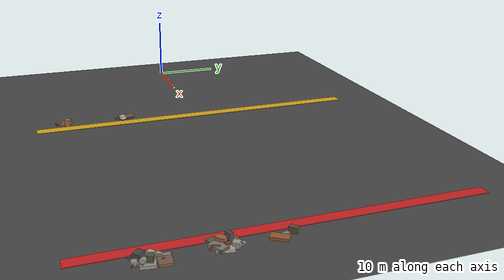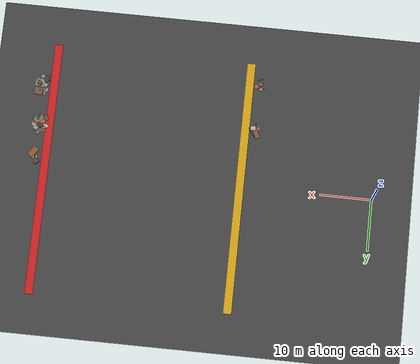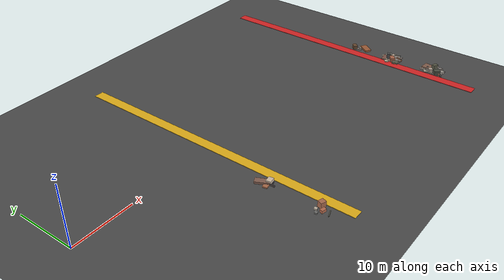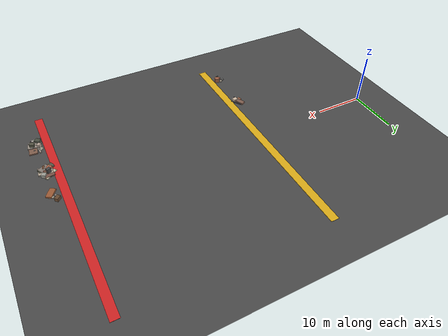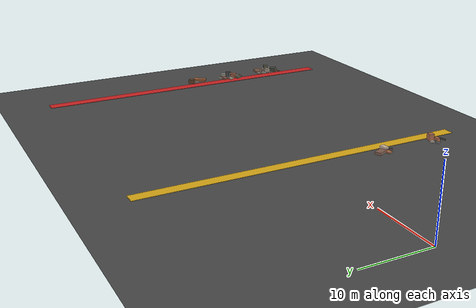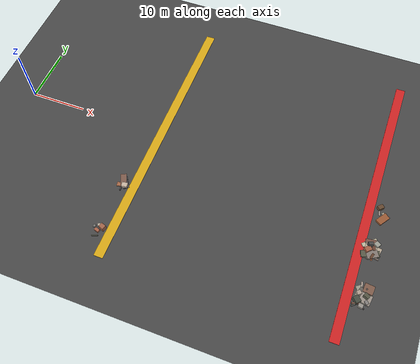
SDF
<sdf version="1.6">
 <world name="navitas_arena">
  <model name="ground_plane">
   <static>true</static>
   <link name="link">
    <collision name="collision">
     <geometry><plane><normal>0 0 1</normal><size>400 400</size></plane></geometry>
     <surface><friction><ode><mu>0.800</mu><mu2>0.800</mu2></ode></friction></surface>
    </collision>
    <visual name="visual">
     <cast_shadows>false</cast_shadows>
     <geometry><plane><normal>0 0 1</normal><size>400 400</size></plane></geometry>
     <material>
      <specular>0.04 0.04 0.04 1</specular>
      <script>
       <uri>file://media/materials/scripts/navitas_asphalt.material</uri>
       <name>Navitas/RealArenaAsphalt</name>
      </script>
     </material>
    </visual>
   </link>
  </model>
  <model name="brd_orta_E">
   <static>true</static>
   <pose>25.800 0.000 0.040 0 0 0.000</pose>
   <link name="link">
    <collision name="col"><geometry><box><size>1.600 50.000 0.080</size></box></geometry></collision>
    <visual name="vis">
     <geometry><box><size>1.600 50.000 0.080</size></box></geometry>
     <material>
      <ambient>0.90 0.70 0.10 1</ambient>
      <diffuse>0.90 0.70 0.10 1</diffuse>
      <specular>0.04 0.04 0.04 1</specular>
     </material>
    </visual>
   </link>
  </model>
  <model name="deb_orta_58">
   <static>true</static>
   <pose>23.902 -20.772 0.000 0 0 0</pose>
   <link name="link">
    <collision name="col_0">
     <pose>0.462 0.488 0.489 0.000 0.000 1.232</pose>
     <geometry><box><size>0.779 0.884 0.979</size></box></geometry>
    </collision>
    <visual name="vis_0">
     <pose>0.462 0.488 0.489 0.000 0.000 1.232</pose>
     <geometry><box><size>0.779 0.884 0.979</size></box></geometry>
     <material>
      <ambient>0.62 0.39 0.28 1</ambient>
      <diffuse>0.67 0.42 0.31 1</diffuse>
      <specular>0.05 0.05 0.045 1</specular>
     </material>
    </visual>
    <collision name="col_1">
     <pose>-0.336 0.082 0.093 0.000 0.000 2.559</pose>
     <geometry><box><size>0.305 0.218 0.186</size></box></geometry>
    </collision>
    <visual name="vis_1">
     <pose>-0.336 0.082 0.093 0.000 0.000 2.559</pose>
     <geometry><box><size>0.305 0.218 0.186</size></box></geometry>
     <material>
      <ambient>0.55 0.54 0.49 1</ambient>
      <diffuse>0.59 0.59 0.53 1</diffuse>
      <specular>0.05 0.05 0.045 1</specular>
     </material>
    </visual>
    <collision name="col_2">
     <pose>-0.265 -0.174 0.229 0.000 0.000 1.310</pose>
     <geometry><box><size>0.517 0.791 0.458</size></box></geometry>
    </collision>
    <visual name="vis_2">
     <pose>-0.265 -0.174 0.229 0.000 0.000 1.310</pose>
     <geometry><box><size>0.517 0.791 0.458</size></box></geometry>
     <material>
      <ambient>0.66 0.39 0.28 1</ambient>
      <diffuse>0.71 0.42 0.31 1</diffuse>
      <specular>0.05 0.05 0.045 1</specular>
     </material>
    </visual>
    <collision name="col_3">
     <pose>-1.041 0.398 0.112 0.000 0.000 3.349</pose>
     <geometry><box><size>0.438 0.429 0.225</size></box></geometry>
    </collision>
    <visual name="vis_3">
     <pose>-1.041 0.398 0.112 0.000 0.000 3.349</pose>
     <geometry><box><size>0.438 0.429 0.225</size></box></geometry>
     <material>
      <ambient>0.43 0.43 0.42 1</ambient>
      <diffuse>0.46 0.46 0.45 1</diffuse>
      <specular>0.05 0.05 0.045 1</specular>
     </material>
    </visual>
    <collision name="col_4">
     <pose>-0.233 -1.136 0.109 0.000 0.000 3.494</pose>
     <geometry><box><size>1.040 0.147 0.217</size></box></geometry>
    </collision>
    <visual name="vis_4">
     <pose>-0.233 -1.136 0.109 0.000 0.000 3.494</pose>
     <geometry><box><size>1.040 0.147 0.217</size></box></geometry>
     <material>
      <ambient>0.30 0.31 0.27 1</ambient>
      <diffuse>0.33 0.33 0.29 1</diffuse>
      <specular>0.05 0.05 0.045 1</specular>
     </material>
    </visual>
    <collision name="col_5">
     <pose>-0.420 0.854 0.114 0.000 0.000 1.861</pose>
     <geometry><box><size>0.468 0.460 0.228</size></box></geometry>
    </collision>
    <visual name="vis_5">
     <pose>-0.420 0.854 0.114 0.000 0.000 1.861</pose>
     <geometry><box><size>0.468 0.460 0.228</size></box></geometry>
     <material>
      <ambient>0.71 0.66 0.60 1</ambient>
      <diffuse>0.77 0.72 0.65 1</diffuse>
      <specular>0.05 0.05 0.045 1</specular>
     </material>
    </visual>
   </link>
  </model>
  <model name="deb_orta_291">
   <static>true</static>
   <pose>23.845 -11.563 0.000 0 0 0</pose>
   <link name="link">
    <collision name="col_0">
     <pose>-0.003 -0.322 0.136 0.000 0.000 1.586</pose>
     <geometry><box><size>2.205 0.167 0.272</size></box></geometry>
    </collision>
    <visual name="vis_0">
     <pose>-0.003 -0.322 0.136 0.000 0.000 1.586</pose>
     <geometry><box><size>2.205 0.167 0.272</size></box></geometry>
     <material>
      <ambient>0.28 0.26 0.26 1</ambient>
      <diffuse>0.31 0.28 0.28 1</diffuse>
      <specular>0.05 0.05 0.045 1</specular>
     </material>
    </visual>
    <collision name="col_1">
     <pose>-0.208 -0.301 0.096 0.000 0.000 0.202</pose>
     <geometry><box><size>1.535 0.749 0.192</size></box></geometry>
    </collision>
    <visual name="vis_1">
     <pose>-0.208 -0.301 0.096 0.000 0.000 0.202</pose>
     <geometry><box><size>1.535 0.749 0.192</size></box></geometry>
     <material>
      <ambient>0.63 0.40 0.28 1</ambient>
      <diffuse>0.68 0.43 0.30 1</diffuse>
      <specular>0.05 0.05 0.045 1</specular>
     </material>
    </visual>
    <collision name="col_2">
     <pose>0.429 0.160 0.090 0.000 0.000 1.834</pose>
     <geometry><box><size>1.984 0.197 0.180</size></box></geometry>
    </collision>
    <visual name="vis_2">
     <pose>0.429 0.160 0.090 0.000 0.000 1.834</pose>
     <geometry><box><size>1.984 0.197 0.180</size></box></geometry>
     <material>
      <ambient>0.32 0.33 0.31 1</ambient>
      <diffuse>0.35 0.36 0.33 1</diffuse>
      <specular>0.05 0.05 0.045 1</specular>
     </material>
    </visual>
    <collision name="col_3">
     <pose>-0.172 0.544 0.187 0.000 0.000 2.008</pose>
     <geometry><box><size>2.223 0.965 0.374</size></box></geometry>
    </collision>
    <visual name="vis_3">
     <pose>-0.172 0.544 0.187 0.000 0.000 2.008</pose>
     <geometry><box><size>2.223 0.965 0.374</size></box></geometry>
     <material>
      <ambient>0.48 0.35 0.30 1</ambient>
      <diffuse>0.52 0.38 0.32 1</diffuse>
      <specular>0.05 0.05 0.045 1</specular>
     </material>
    </visual>
    <collision name="col_4">
     <pose>0.428 -0.327 0.301 0.000 0.000 0.153</pose>
     <geometry><box><size>0.974 0.791 0.603</size></box></geometry>
    </collision>
    <visual name="vis_4">
     <pose>0.428 -0.327 0.301 0.000 0.000 0.153</pose>
     <geometry><box><size>0.974 0.791 0.603</size></box></geometry>
     <material>
      <ambient>0.77 0.69 0.62 1</ambient>
      <diffuse>0.83 0.75 0.67 1</diffuse>
      <specular>0.05 0.05 0.045 1</specular>
     </material>
    </visual>
    <collision name="col_5">
     <pose>0.255 0.286 0.081 0.000 0.000 2.172</pose>
     <geometry><box><size>2.301 0.990 0.162</size></box></geometry>
    </collision>
    <visual name="vis_5">
     <pose>0.255 0.286 0.081 0.000 0.000 2.172</pose>
     <geometry><box><size>2.301 0.990 0.162</size></box></geometry>
     <material>
      <ambient>0.28 0.26 0.28 1</ambient>
      <diffuse>0.30 0.28 0.30 1</diffuse>
      <specular>0.05 0.05 0.045 1</specular>
     </material>
    </visual>
    <collision name="col_6">
     <pose>-0.111 0.134 0.080 0.000 0.000 1.955</pose>
     <geometry><box><size>0.342 0.313 0.159</size></box></geometry>
    </collision>
    <visual name="vis_6">
     <pose>-0.111 0.134 0.080 0.000 0.000 1.955</pose>
     <geometry><box><size>0.342 0.313 0.159</size></box></geometry>
     <material>
      <ambient>0.68 0.62 0.53 1</ambient>
      <diffuse>0.73 0.67 0.57 1</diffuse>
      <specular>0.05 0.05 0.045 1</specular>
     </material>
    </visual>
   </link>
  </model>
  <model name="brd_zor_W">
   <static>true</static>
   <pose>64.200 0.000 0.040 0 0 0.000</pose>
   <link name="link">
    <collision name="col"><geometry><box><size>1.600 50.000 0.080</size></box></geometry></collision>
    <visual name="vis">
     <geometry><box><size>1.600 50.000 0.080</size></box></geometry>
     <material>
      <ambient>0.85 0.15 0.15 1</ambient>
      <diffuse>0.85 0.15 0.15 1</diffuse>
      <specular>0.04 0.04 0.04 1</specular>
     </material>
    </visual>
   </link>
  </model>
  <model name="deb_zor_11">
   <static>true</static>
   <pose>66.495 -18.193 0.000 0 0 0</pose>
   <link name="link">
    <collision name="col_0">
     <pose>-0.506 0.148 0.105 0.000 0.000 0.675</pose>
     <geometry><box><size>2.064 0.185 0.211</size></box></geometry>
    </collision>
    <visual name="vis_0">
     <pose>-0.506 0.148 0.105 0.000 0.000 0.675</pose>
     <geometry><box><size>2.064 0.185 0.211</size></box></geometry>
     <material>
      <ambient>0.33 0.33 0.31 1</ambient>
      <diffuse>0.36 0.36 0.34 1</diffuse>
      <specular>0.05 0.05 0.045 1</specular>
     </material>
    </visual>
    <collision name="col_1">
     <pose>0.050 -0.058 0.206 0.000 0.000 1.429</pose>
     <geometry><box><size>0.641 0.743 0.413</size></box></geometry>
    </collision>
    <visual name="vis_1">
     <pose>0.050 -0.058 0.206 0.000 0.000 1.429</pose>
     <geometry><box><size>0.641 0.743 0.413</size></box></geometry>
     <material>
      <ambient>0.57 0.56 0.53 1</ambient>
      <diffuse>0.62 0.60 0.57 1</diffuse>
      <specular>0.05 0.05 0.045 1</specular>
     </material>
    </visual>
    <collision name="col_2">
     <pose>0.740 0.671 0.262 0.000 0.000 0.753</pose>
     <geometry><box><size>0.521 0.614 0.524</size></box></geometry>
    </collision>
    <visual name="vis_2">
     <pose>0.740 0.671 0.262 0.000 0.000 0.753</pose>
     <geometry><box><size>0.521 0.614 0.524</size></box></geometry>
     <material>
      <ambient>0.50 0.48 0.47 1</ambient>
      <diffuse>0.54 0.52 0.51 1</diffuse>
      <specular>0.05 0.05 0.045 1</specular>
     </material>
    </visual>
    <collision name="col_3">
     <pose>-0.751 0.591 0.410 0.000 0.000 -0.798</pose>
     <geometry><box><size>1.064 0.903 0.821</size></box></geometry>
    </collision>
    <visual name="vis_3">
     <pose>-0.751 0.591 0.410 0.000 0.000 -0.798</pose>
     <geometry><box><size>1.064 0.903 0.821</size></box></geometry>
     <material>
      <ambient>0.27 0.28 0.24 1</ambient>
      <diffuse>0.29 0.31 0.26 1</diffuse>
      <specular>0.05 0.05 0.045 1</specular>
     </material>
    </visual>
    <collision name="col_4">
     <pose>-0.199 0.969 0.085 0.000 0.000 -0.477</pose>
     <geometry><box><size>2.002 1.413 0.170</size></box></geometry>
    </collision>
    <visual name="vis_4">
     <pose>-0.199 0.969 0.085 0.000 0.000 -0.477</pose>
     <geometry><box><size>2.002 1.413 0.170</size></box></geometry>
     <material>
      <ambient>0.48 0.48 0.45 1</ambient>
      <diffuse>0.52 0.52 0.49 1</diffuse>
      <specular>0.05 0.05 0.045 1</specular>
     </material>
    </visual>
    <collision name="col_5">
     <pose>-0.825 0.079 0.167 0.000 0.000 0.291</pose>
     <geometry><box><size>1.130 0.228 0.335</size></box></geometry>
    </collision>
    <visual name="vis_5">
     <pose>-0.825 0.079 0.167 0.000 0.000 0.291</pose>
     <geometry><box><size>1.130 0.228 0.335</size></box></geometry>
     <material>
      <ambient>0.49 0.35 0.29 1</ambient>
      <diffuse>0.53 0.38 0.31 1</diffuse>
      <specular>0.05 0.05 0.045 1</specular>
     </material>
    </visual>
    <collision name="col_6">
     <pose>0.119 -0.096 0.131 0.000 0.000 -0.514</pose>
     <geometry><box><size>1.174 0.154 0.262</size></box></geometry>
    </collision>
    <visual name="vis_6">
     <pose>0.119 -0.096 0.131 0.000 0.000 -0.514</pose>
     <geometry><box><size>1.174 0.154 0.262</size></box></geometry>
     <material>
      <ambient>0.38 0.35 0.35 1</ambient>
      <diffuse>0.41 0.37 0.38 1</diffuse>
      <specular>0.05 0.05 0.045 1</specular>
     </material>
    </visual>
   </link>
  </model>
  <model name="deb_zor_134">
   <static>true</static>
   <pose>66.097 -9.922 0.000 0 0 0</pose>
   <link name="link">
    <collision name="col_0">
     <pose>0.304 0.087 0.194 0.000 0.000 1.255</pose>
     <geometry><box><size>0.939 0.388 0.388</size></box></geometry>
    </collision>
    <visual name="vis_0">
     <pose>0.304 0.087 0.194 0.000 0.000 1.255</pose>
     <geometry><box><size>0.939 0.388 0.388</size></box></geometry>
     <material>
      <ambient>0.38 0.25 0.18 1</ambient>
      <diffuse>0.41 0.27 0.19 1</diffuse>
      <specular>0.05 0.05 0.045 1</specular>
     </material>
    </visual>
    <collision name="col_1">
     <pose>-0.064 0.372 0.175 0.000 0.000 3.443</pose>
     <geometry><box><size>2.991 1.077 0.351</size></box></geometry>
    </collision>
    <visual name="vis_1">
     <pose>-0.064 0.372 0.175 0.000 0.000 3.443</pose>
     <geometry><box><size>2.991 1.077 0.351</size></box></geometry>
     <material>
      <ambient>0.34 0.34 0.28 1</ambient>
      <diffuse>0.37 0.37 0.30 1</diffuse>
      <specular>0.05 0.05 0.045 1</specular>
     </material>
    </visual>
    <collision name="col_2">
     <pose>-0.521 -0.086 0.129 0.000 0.000 2.791</pose>
     <geometry><box><size>0.502 0.287 0.258</size></box></geometry>
    </collision>
    <visual name="vis_2">
     <pose>-0.521 -0.086 0.129 0.000 0.000 2.791</pose>
     <geometry><box><size>0.502 0.287 0.258</size></box></geometry>
     <material>
      <ambient>0.72 0.69 0.60 1</ambient>
      <diffuse>0.78 0.75 0.64 1</diffuse>
      <specular>0.05 0.05 0.045 1</specular>
     </material>
    </visual>
    <collision name="col_3">
     <pose>-0.405 -0.302 0.141 0.000 0.000 1.297</pose>
     <geometry><box><size>0.460 0.226 0.282</size></box></geometry>
    </collision>
    <visual name="vis_3">
     <pose>-0.405 -0.302 0.141 0.000 0.000 1.297</pose>
     <geometry><box><size>0.460 0.226 0.282</size></box></geometry>
     <material>
      <ambient>0.47 0.44 0.40 1</ambient>
      <diffuse>0.51 0.47 0.44 1</diffuse>
      <specular>0.05 0.05 0.045 1</specular>
     </material>
    </visual>
    <collision name="col_4">
     <pose>0.414 0.049 0.095 0.000 0.000 2.966</pose>
     <geometry><box><size>2.044 0.210 0.189</size></box></geometry>
    </collision>
    <visual name="vis_4">
     <pose>0.414 0.049 0.095 0.000 0.000 2.966</pose>
     <geometry><box><size>2.044 0.210 0.189</size></box></geometry>
     <material>
      <ambient>0.56 0.51 0.47 1</ambient>
      <diffuse>0.61 0.55 0.51 1</diffuse>
      <specular>0.05 0.05 0.045 1</specular>
     </material>
    </visual>
   </link>
  </model>
  <model name="deb_zor_225">
   <static>true</static>
   <pose>66.293 -1.892 0.000 0 0 0</pose>
   <link name="link">
    <collision name="col_0">
     <pose>0.269 0.056 0.083 0.000 0.000 0.726</pose>
     <geometry><box><size>0.466 0.407 0.167</size></box></geometry>
    </collision>
    <visual name="vis_0">
     <pose>0.269 0.056 0.083 0.000 0.000 0.726</pose>
     <geometry><box><size>0.466 0.407 0.167</size></box></geometry>
     <material>
      <ambient>0.67 0.63 0.56 1</ambient>
      <diffuse>0.72 0.68 0.60 1</diffuse>
      <specular>0.05 0.05 0.045 1</specular>
     </material>
    </visual>
    <collision name="col_1">
     <pose>-0.437 0.178 0.076 0.000 0.000 1.831</pose>
     <geometry><box><size>1.224 0.287 0.153</size></box></geometry>
    </collision>
    <visual name="vis_1">
     <pose>-0.437 0.178 0.076 0.000 0.000 1.831</pose>
     <geometry><box><size>1.224 0.287 0.153</size></box></geometry>
     <material>
      <ambient>0.62 0.57 0.54 1</ambient>
      <diffuse>0.67 0.62 0.59 1</diffuse>
      <specular>0.05 0.05 0.045 1</specular>
     </material>
    </visual>
    <collision name="col_2">
     <pose>-0.441 0.925 0.350 0.000 0.000 0.786</pose>
     <geometry><box><size>0.989 0.713 0.701</size></box></geometry>
    </collision>
    <visual name="vis_2">
     <pose>-0.441 0.925 0.350 0.000 0.000 0.786</pose>
     <geometry><box><size>0.989 0.713 0.701</size></box></geometry>
     <material>
      <ambient>0.39 0.28 0.18 1</ambient>
      <diffuse>0.42 0.30 0.20 1</diffuse>
      <specular>0.05 0.05 0.045 1</specular>
     </material>
    </visual>
    <collision name="col_3">
     <pose>0.358 -0.969 0.170 0.000 0.000 0.963</pose>
     <geometry><box><size>2.125 1.121 0.340</size></box></geometry>
    </collision>
    <visual name="vis_3">
     <pose>0.358 -0.969 0.170 0.000 0.000 0.963</pose>
     <geometry><box><size>2.125 1.121 0.340</size></box></geometry>
     <material>
      <ambient>0.58 0.35 0.20 1</ambient>
      <diffuse>0.63 0.37 0.22 1</diffuse>
      <specular>0.05 0.05 0.045 1</specular>
     </material>
    </visual>
   </link>
  </model>
  <model name="deb_zor_247">
   <static>true</static>
   <pose>66.371 -16.031 0.000 0 0 0</pose>
   <link name="link">
    <collision name="col_0">
     <pose>0.629 -0.638 0.530 0.000 0.000 1.166</pose>
     <geometry><box><size>0.654 0.877 1.060</size></box></geometry>
    </collision>
    <visual name="vis_0">
     <pose>0.629 -0.638 0.530 0.000 0.000 1.166</pose>
     <geometry><box><size>0.654 0.877 1.060</size></box></geometry>
     <material>
      <ambient>0.32 0.32 0.26 1</ambient>
      <diffuse>0.35 0.35 0.28 1</diffuse>
      <specular>0.05 0.05 0.045 1</specular>
     </material>
    </visual>
    <collision name="col_1">
     <pose>0.490 0.646 0.156 0.000 0.000 2.638</pose>
     <geometry><box><size>0.290 0.255 0.311</size></box></geometry>
    </collision>
    <visual name="vis_1">
     <pose>0.490 0.646 0.156 0.000 0.000 2.638</pose>
     <geometry><box><size>0.290 0.255 0.311</size></box></geometry>
     <material>
      <ambient>0.34 0.31 0.31 1</ambient>
      <diffuse>0.37 0.34 0.33 1</diffuse>
      <specular>0.05 0.05 0.045 1</specular>
     </material>
    </visual>
    <collision name="col_2">
     <pose>-0.575 -0.383 0.360 0.000 0.000 2.259</pose>
     <geometry><box><size>0.650 0.706 0.721</size></box></geometry>
    </collision>
    <visual name="vis_2">
     <pose>-0.575 -0.383 0.360 0.000 0.000 2.259</pose>
     <geometry><box><size>0.650 0.706 0.721</size></box></geometry>
     <material>
      <ambient>0.67 0.60 0.55 1</ambient>
      <diffuse>0.72 0.65 0.59 1</diffuse>
      <specular>0.05 0.05 0.045 1</specular>
     </material>
    </visual>
    <collision name="col_3">
     <pose>-0.830 -0.711 0.094 0.000 0.000 2.751</pose>
     <geometry><box><size>0.411 0.274 0.188</size></box></geometry>
    </collision>
    <visual name="vis_3">
     <pose>-0.830 -0.711 0.094 0.000 0.000 2.751</pose>
     <geometry><box><size>0.411 0.274 0.188</size></box></geometry>
     <material>
      <ambient>0.61 0.59 0.50 1</ambient>
      <diffuse>0.65 0.64 0.54 1</diffuse>
      <specular>0.05 0.05 0.045 1</specular>
     </material>
    </visual>
    <collision name="col_4">
     <pose>0.790 0.783 0.139 0.000 0.000 1.469</pose>
     <geometry><box><size>1.507 1.592 0.278</size></box></geometry>
    </collision>
    <visual name="vis_4">
     <pose>0.790 0.783 0.139 0.000 0.000 1.469</pose>
     <geometry><box><size>1.507 1.592 0.278</size></box></geometry>
     <material>
      <ambient>0.48 0.35 0.29 1</ambient>
      <diffuse>0.52 0.38 0.31 1</diffuse>
      <specular>0.05 0.05 0.045 1</specular>
     </material>
    </visual>
   </link>
  </model>
  <model name="deb_zor_259">
   <static>true</static>
   <pose>66.219 -16.393 0.000 0 0 0</pose>
   <link name="link">
    <collision name="col_0">
     <pose>-0.184 0.445 0.096 0.000 0.000 2.215</pose>
     <geometry><box><size>1.824 0.995 0.191</size></box></geometry>
    </collision>
    <visual name="vis_0">
     <pose>-0.184 0.445 0.096 0.000 0.000 2.215</pose>
     <geometry><box><size>1.824 0.995 0.191</size></box></geometry>
     <material>
      <ambient>0.58 0.58 0.52 1</ambient>
      <diffuse>0.63 0.63 0.56 1</diffuse>
      <specular>0.05 0.05 0.045 1</specular>
     </material>
    </visual>
    <collision name="col_1">
     <pose>0.765 -0.573 0.179 0.000 0.000 2.983</pose>
     <geometry><box><size>1.776 1.681 0.359</size></box></geometry>
    </collision>
    <visual name="vis_1">
     <pose>0.765 -0.573 0.179 0.000 0.000 2.983</pose>
     <geometry><box><size>1.776 1.681 0.359</size></box></geometry>
     <material>
      <ambient>0.58 0.54 0.51 1</ambient>
      <diffuse>0.63 0.59 0.55 1</diffuse>
      <specular>0.05 0.05 0.045 1</specular>
     </material>
    </visual>
    <collision name="col_2">
     <pose>0.272 0.574 0.115 0.000 0.000 2.825</pose>
     <geometry><box><size>1.453 0.762 0.229</size></box></geometry>
    </collision>
    <visual name="vis_2">
     <pose>0.272 0.574 0.115 0.000 0.000 2.825</pose>
     <geometry><box><size>1.453 0.762 0.229</size></box></geometry>
     <material>
      <ambient>0.39 0.37 0.34 1</ambient>
      <diffuse>0.42 0.40 0.37 1</diffuse>
      <specular>0.05 0.05 0.045 1</specular>
     </material>
    </visual>
    <collision name="col_3">
     <pose>-0.151 0.823 0.114 0.000 0.000 1.704</pose>
     <geometry><box><size>2.311 0.304 0.228</size></box></geometry>
    </collision>
    <visual name="vis_3">
     <pose>-0.151 0.823 0.114 0.000 0.000 1.704</pose>
     <geometry><box><size>2.311 0.304 0.228</size></box></geometry>
     <material>
      <ambient>0.63 0.57 0.53 1</ambient>
      <diffuse>0.68 0.62 0.58 1</diffuse>
      <specular>0.05 0.05 0.045 1</specular>
     </material>
    </visual>
   </link>
  </model>
  <model name="deb_zor_322">
   <static>true</static>
   <pose>66.136 -8.013 0.000 0 0 0</pose>
   <link name="link">
    <collision name="col_0">
     <pose>0.606 0.316 0.331 0.000 0.000 4.130</pose>
     <geometry><box><size>0.815 0.839 0.661</size></box></geometry>
    </collision>
    <visual name="vis_0">
     <pose>0.606 0.316 0.331 0.000 0.000 4.130</pose>
     <geometry><box><size>0.815 0.839 0.661</size></box></geometry>
     <material>
      <ambient>0.59 0.59 0.55 1</ambient>
      <diffuse>0.64 0.64 0.60 1</diffuse>
      <specular>0.05 0.05 0.045 1</specular>
     </material>
    </visual>
    <collision name="col_1">
     <pose>-0.451 -0.141 0.617 0.000 0.000 1.937</pose>
     <geometry><box><size>0.578 0.759 1.233</size></box></geometry>
    </collision>
    <visual name="vis_1">
     <pose>-0.451 -0.141 0.617 0.000 0.000 1.937</pose>
     <geometry><box><size>0.578 0.759 1.233</size></box></geometry>
     <material>
      <ambient>0.28 0.28 0.28 1</ambient>
      <diffuse>0.30 0.30 0.30 1</diffuse>
      <specular>0.05 0.05 0.045 1</specular>
     </material>
    </visual>
    <collision name="col_2">
     <pose>-0.072 -0.147 0.172 0.000 0.000 4.021</pose>
     <geometry><box><size>1.973 0.259 0.345</size></box></geometry>
    </collision>
    <visual name="vis_2">
     <pose>-0.072 -0.147 0.172 0.000 0.000 4.021</pose>
     <geometry><box><size>1.973 0.259 0.345</size></box></geometry>
     <material>
      <ambient>0.42 0.30 0.21 1</ambient>
      <diffuse>0.45 0.32 0.23 1</diffuse>
      <specular>0.05 0.05 0.045 1</specular>
     </material>
    </visual>
    <collision name="col_3">
     <pose>-0.585 0.357 0.106 0.000 0.000 3.806</pose>
     <geometry><box><size>2.651 0.686 0.211</size></box></geometry>
    </collision>
    <visual name="vis_3">
     <pose>-0.585 0.357 0.106 0.000 0.000 3.806</pose>
     <geometry><box><size>2.651 0.686 0.211</size></box></geometry>
     <material>
      <ambient>0.74 0.71 0.60 1</ambient>
      <diffuse>0.79 0.76 0.65 1</diffuse>
      <specular>0.05 0.05 0.045 1</specular>
     </material>
    </visual>
    <collision name="col_4">
     <pose>0.236 -0.429 0.230 0.000 0.000 3.249</pose>
     <geometry><box><size>0.536 0.786 0.461</size></box></geometry>
    </collision>
    <visual name="vis_4">
     <pose>0.236 -0.429 0.230 0.000 0.000 3.249</pose>
     <geometry><box><size>0.536 0.786 0.461</size></box></geometry>
     <material>
      <ambient>0.40 0.26 0.20 1</ambient>
      <diffuse>0.43 0.28 0.22 1</diffuse>
      <specular>0.05 0.05 0.045 1</specular>
     </material>
    </visual>
    <collision name="col_5">
     <pose>-0.257 -0.207 0.130 0.000 0.000 2.258</pose>
     <geometry><box><size>2.207 1.087 0.261</size></box></geometry>
    </collision>
    <visual name="vis_5">
     <pose>-0.257 -0.207 0.130 0.000 0.000 2.258</pose>
     <geometry><box><size>2.207 1.087 0.261</size></box></geometry>
     <material>
      <ambient>0.53 0.51 0.45 1</ambient>
      <diffuse>0.57 0.56 0.49 1</diffuse>
      <specular>0.05 0.05 0.045 1</specular>
     </material>
    </visual>
    <collision name="col_6">
     <pose>-0.332 0.570 0.137 0.000 0.000 3.280</pose>
     <geometry><box><size>1.852 0.843 0.273</size></box></geometry>
    </collision>
    <visual name="vis_6">
     <pose>-0.332 0.570 0.137 0.000 0.000 3.280</pose>
     <geometry><box><size>1.852 0.843 0.273</size></box></geometry>
     <material>
      <ambient>0.45 0.31 0.27 1</ambient>
      <diffuse>0.49 0.34 0.29 1</diffuse>
      <specular>0.05 0.05 0.045 1</specular>
     </material>
    </visual>
   </link>
  </model>
  <model name="deb_zor_341">
   <static>true</static>
   <pose>66.237 -9.069 0.000 0 0 0</pose>
   <link name="link">
    <collision name="col_0">
     <pose>0.050 0.487 0.142 0.000 0.000 -0.154</pose>
     <geometry><box><size>2.622 1.330 0.284</size></box></geometry>
    </collision>
    <visual name="vis_0">
     <pose>0.050 0.487 0.142 0.000 0.000 -0.154</pose>
     <geometry><box><size>2.622 1.330 0.284</size></box></geometry>
     <material>
      <ambient>0.69 0.63 0.56 1</ambient>
      <diffuse>0.74 0.68 0.60 1</diffuse>
      <specular>0.05 0.05 0.045 1</specular>
     </material>
    </visual>
    <collision name="col_1">
     <pose>-0.720 0.096 0.400 0.000 0.000 0.766</pose>
     <geometry><box><size>1.083 0.824 0.799</size></box></geometry>
    </collision>
    <visual name="vis_1">
     <pose>-0.720 0.096 0.400 0.000 0.000 0.766</pose>
     <geometry><box><size>1.083 0.824 0.799</size></box></geometry>
     <material>
      <ambient>0.62 0.37 0.27 1</ambient>
      <diffuse>0.67 0.40 0.29 1</diffuse>
      <specular>0.05 0.05 0.045 1</specular>
     </material>
    </visual>
    <collision name="col_2">
     <pose>0.042 -0.874 0.071 0.000 0.000 1.886</pose>
     <geometry><box><size>1.186 0.284 0.141</size></box></geometry>
    </collision>
    <visual name="vis_2">
     <pose>0.042 -0.874 0.071 0.000 0.000 1.886</pose>
     <geometry><box><size>1.186 0.284 0.141</size></box></geometry>
     <material>
      <ambient>0.57 0.32 0.20 1</ambient>
      <diffuse>0.61 0.35 0.21 1</diffuse>
      <specular>0.05 0.05 0.045 1</specular>
     </material>
    </visual>
    <collision name="col_3">
     <pose>0.122 -0.459 0.182 0.000 0.000 0.534</pose>
     <geometry><box><size>1.933 1.268 0.363</size></box></geometry>
    </collision>
    <visual name="vis_3">
     <pose>0.122 -0.459 0.182 0.000 0.000 0.534</pose>
     <geometry><box><size>1.933 1.268 0.363</size></box></geometry>
     <material>
      <ambient>0.50 0.47 0.43 1</ambient>
      <diffuse>0.54 0.50 0.47 1</diffuse>
      <specular>0.05 0.05 0.045 1</specular>
     </material>
    </visual>
    <collision name="col_4">
     <pose>-0.600 -0.435 0.086 0.000 0.000 1.594</pose>
     <geometry><box><size>1.562 1.291 0.172</size></box></geometry>
    </collision>
    <visual name="vis_4">
     <pose>-0.600 -0.435 0.086 0.000 0.000 1.594</pose>
     <geometry><box><size>1.562 1.291 0.172</size></box></geometry>
     <material>
      <ambient>0.68 0.62 0.56 1</ambient>
      <diffuse>0.74 0.67 0.60 1</diffuse>
      <specular>0.05 0.05 0.045 1</specular>
     </material>
    </visual>
    <collision name="col_5">
     <pose>-0.685 0.481 0.113 0.000 0.000 2.322</pose>
     <geometry><box><size>0.192 0.267 0.227</size></box></geometry>
    </collision>
    <visual name="vis_5">
     <pose>-0.685 0.481 0.113 0.000 0.000 2.322</pose>
     <geometry><box><size>0.192 0.267 0.227</size></box></geometry>
     <material>
      <ambient>0.54 0.53 0.48 1</ambient>
      <diffuse>0.59 0.57 0.51 1</diffuse>
      <specular>0.05 0.05 0.045 1</specular>
     </material>
    </visual>
   </link>
  </model>
 </world>
</sdf>
